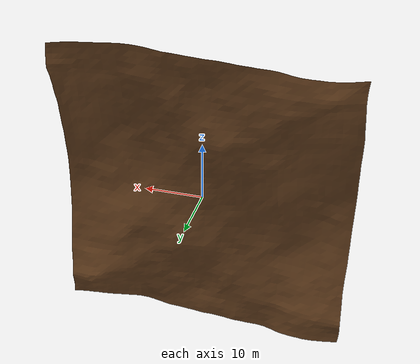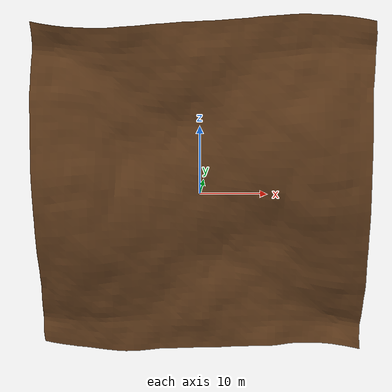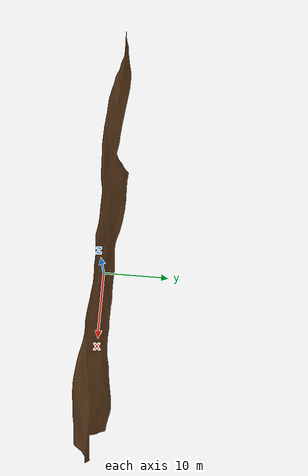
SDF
<?xml version="1.0" ?>
<sdf version="1.8">
    <model name="ground">
        <static>true</static>
        <link name="link">
            <collision name="collision">
                <geometry>
                    <mesh>
                        <uri>mesh/terrain.stl</uri>
                    </mesh>
                </geometry>
                <surface>
                    <friction>
                        <ode>
                            <mu>0.9</mu>
                            <mu2>0.9</mu2>
                        </ode>
                    </friction>
                </surface>
            </collision>
            <visual name="visual">
                <geometry>
                    <mesh>
                        <uri>mesh/terrain.obj</uri>
                    </mesh>
                </geometry>
                <material>
                    <ambient>0.25 0.15 0.07 1</ambient>
                    <diffuse>0.40 0.25 0.12 1</diffuse>
                    <specular>0.02 0.02 0.02 1</specular>
                </material>
            </visual>
        </link>
    </model>
</sdf>
